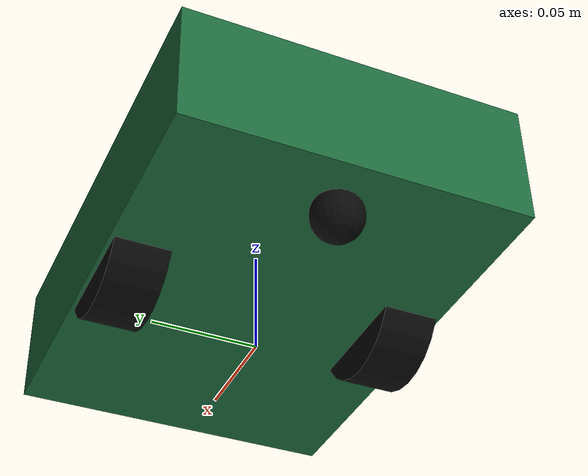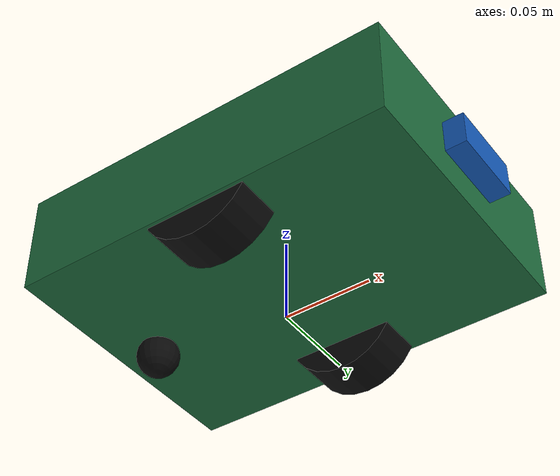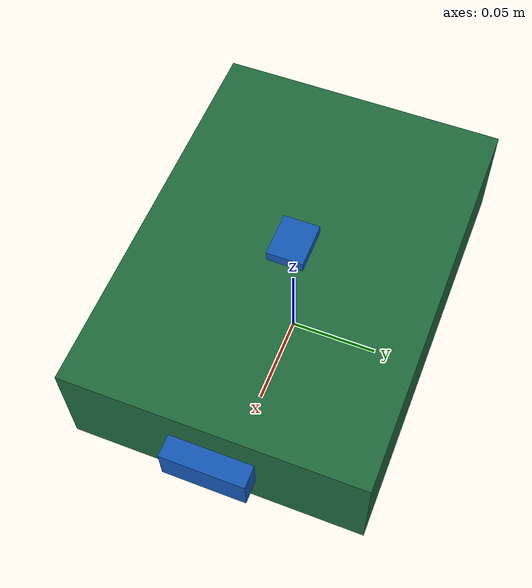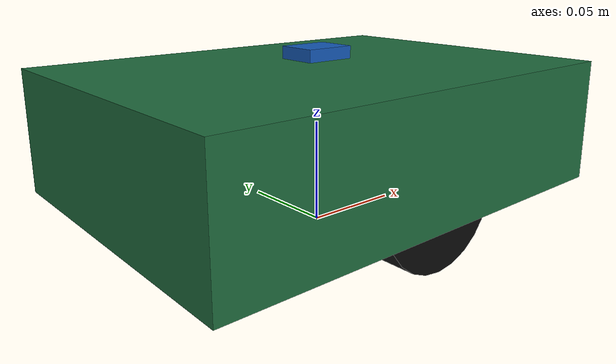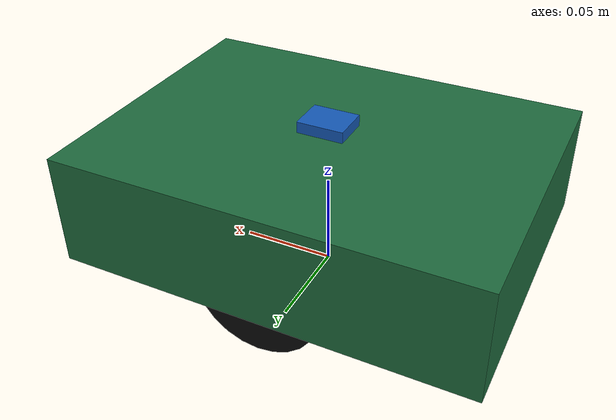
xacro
<?xml version="1.0"?>
<robot xmlns:xacro="http://www.ros.org/wiki/xacro" name="tenshi_no_hana">
  <!-- Provisional dimensions. Replace these properties with measured values. -->
  <xacro:property name="base_length" value="0.22"/>
  <xacro:property name="base_width" value="0.16"/>
  <xacro:property name="base_height" value="0.06"/>
  <xacro:property name="wheel_radius" value="0.033"/>
  <xacro:property name="wheel_width" value="0.026"/>
  <xacro:property name="wheel_separation" value="0.13"/>
  <xacro:property name="base_z" value="${wheel_radius + 0.015}"/>

  <material name="body_green"><color rgba="0.12 0.42 0.24 1"/></material>
  <material name="wheel_black"><color rgba="0.04 0.04 0.04 1"/></material>
  <material name="sensor_blue"><color rgba="0.08 0.35 0.72 1"/></material>

  <link name="base_link">
    <visual>
      <origin xyz="0 0 ${base_z}"/>
      <geometry><box size="${base_length} ${base_width} ${base_height}"/></geometry>
      <material name="body_green"/>
    </visual>
    <collision>
      <origin xyz="0 0 ${base_z}"/>
      <geometry><box size="${base_length} ${base_width} ${base_height}"/></geometry>
    </collision>
    <inertial>
      <origin xyz="0 0 ${base_z}"/>
      <mass value="0.8"/>
      <inertia ixx="0.00195" ixy="0" ixz="0" iyy="0.00347" iyz="0" izz="0.00427"/>
    </inertial>
  </link>

  <xacro:macro name="drive_wheel" params="name side">
    <link name="${name}">
      <visual>
        <origin rpy="${pi / 2} 0 0"/>
        <geometry><cylinder radius="${wheel_radius}" length="${wheel_width}"/></geometry>
        <material name="wheel_black"/>
      </visual>
      <collision>
        <origin rpy="${pi / 2} 0 0"/>
        <geometry><cylinder radius="${wheel_radius}" length="${wheel_width}"/></geometry>
      </collision>
    </link>
    <joint name="${name}_joint" type="fixed">
      <parent link="base_link"/>
      <child link="${name}"/>
      <origin xyz="0 ${side * wheel_separation / 2} ${wheel_radius}" rpy="0 0 0"/>
    </joint>
  </xacro:macro>

  <xacro:drive_wheel name="left_wheel_link" side="1"/>
  <xacro:drive_wheel name="right_wheel_link" side="-1"/>

  <link name="caster_link">
    <visual><geometry><sphere radius="0.012"/></geometry><material name="wheel_black"/></visual>
  </link>
  <joint name="caster_joint" type="fixed">
    <parent link="base_link"/><child link="caster_link"/>
    <origin xyz="-0.085 0 0.012"/>
  </joint>

  <link name="imu_link">
    <visual><geometry><box size="0.025 0.02 0.006"/></geometry><material name="sensor_blue"/></visual>
  </link>
  <joint name="imu_joint" type="fixed">
    <parent link="base_link"/><child link="imu_link"/>
    <origin xyz="0 0 ${base_z + base_height / 2 + 0.006}"/>
  </joint>

  <link name="ultrasonic_link">
    <visual><geometry><box size="0.012 0.045 0.02"/></geometry><material name="sensor_blue"/></visual>
  </link>
  <joint name="ultrasonic_joint" type="fixed">
    <parent link="base_link"/><child link="ultrasonic_link"/>
    <origin xyz="${base_length / 2 + 0.006} 0 ${base_z}"/>
  </joint>
</robot>
